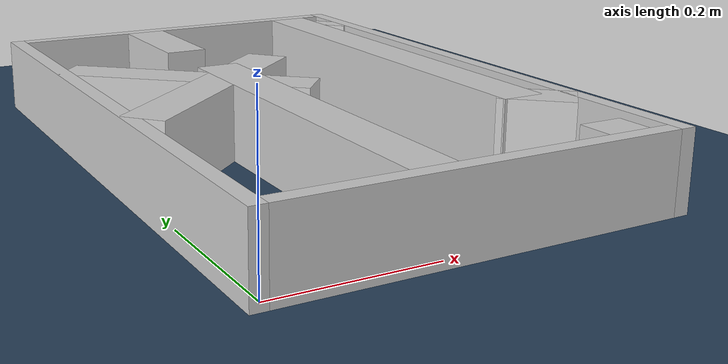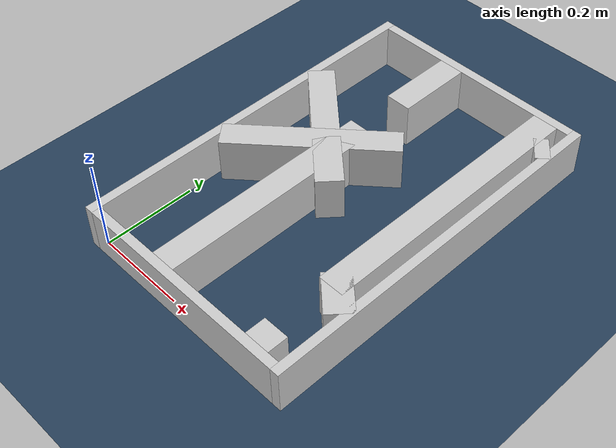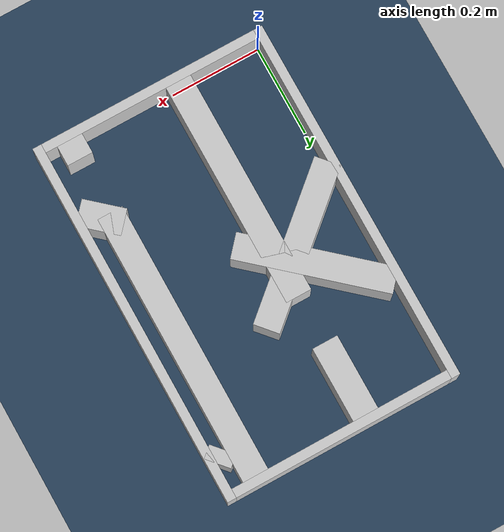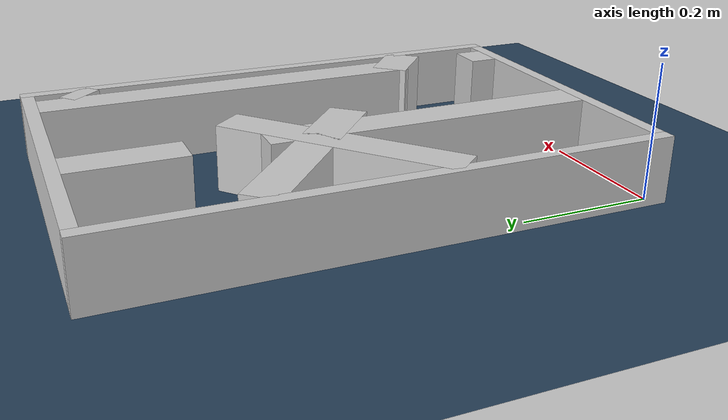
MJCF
<?xml version="1.0" ?>
<mujoco model="generated_real_template">
  <compiler angle="degree"/>
  <option timestep="0.002" integrator="implicitfast" iterations="100" cone="elliptic"/>
  <default>
    <geom density="1"/>
  </default>
  <asset>
    <texture builtin="gradient" height="3072" rgb1="0.3 0.5 0.7" rgb2="0 0 0" type="skybox" width="512"/>
    <texture builtin="checker" height="300" mark="edge" markrgb="0.8 0.8 0.8" name="groundplane" rgb1="0.2 0.3 0.4" rgb2="0.1 0.2 0.3" type="2d" width="300"/>
    <material name="groundplane" reflectance="0.2" texrepeat="5 5" texture="groundplane" texuniform="true"/>
  </asset>
  <worldbody>
    <light dir="0 0 -1" directional="true" pos="0 0 1.5"/>
    <geom name="floor" type="plane" condim="4" friction="0.5 0.005 0.001" material="groundplane" size="0 0 0.05"/>
    <body name="walls">
      <geom name="wall_boundary_left" type="box" condim="4" friction="1.0 0.005 0.0001" rgba="0.8 0.8 0.8 1" pos="-0.010000 0.387500 0.050000" euler="0 0 0.000000" size="0.010000 0.407500 0.050000"/>
      <geom name="wall_boundary_right" type="box" condim="4" friction="1.0 0.005 0.0001" rgba="0.8 0.8 0.8 1" pos="0.500000 0.387500 0.050000" euler="0 0 0.000000" size="0.010000 0.407500 0.050000"/>
      <geom name="wall_boundary_bottom" type="box" condim="4" friction="1.0 0.005 0.0001" rgba="0.8 0.8 0.8 1" pos="0.245000 -0.010000 0.050000" euler="0 0 0.000000" size="0.245000 0.010000 0.050000"/>
      <geom name="wall_boundary_top" type="box" condim="4" friction="1.0 0.005 0.0001" rgba="0.8 0.8 0.8 1" pos="0.245000 0.785000 0.050000" euler="0 0 0.000000" size="0.245000 0.010000 0.050000"/>
      <geom name="wall_inner_1_1" type="box" condim="4" friction="1.0 0.005 0.0001" rgba="0.8 0.8 0.8 1" pos="0.435402 0.022335 0.050000" euler="0 0 90.000000" size="0.022335 0.028500 0.050000"/>
      <geom name="wall_inner_1_2" type="box" condim="4" friction="1.0 0.005 0.0001" rgba="0.8 0.8 0.8 1" pos="0.435402 0.472965 0.050000" euler="0 0 90.000000" size="0.302035 0.028500 0.050000"/>
      <geom name="wall_inner_2_1" type="box" condim="4" friction="1.0 0.005 0.0001" rgba="0.8 0.8 0.8 1" pos="0.478502 0.707728 0.050000" euler="0 0 -138.849404" size="0.015269 0.028500 0.050000"/>
      <geom name="wall_inner_2_2" type="box" condim="4" friction="1.0 0.005 0.0001" rgba="0.8 0.8 0.8 1" pos="0.137274 0.409525 0.050000" euler="0 0 -138.849404" size="0.182307 0.028500 0.050000"/>
      <geom name="wall_inner_3_1" type="box" condim="4" friction="1.0 0.005 0.0001" rgba="0.8 0.8 0.8 1" pos="0.185248 0.251134 0.050000" euler="0 0 90.000000" size="0.251134 0.028500 0.050000"/>
      <geom name="wall_inner_3_2" type="box" condim="4" friction="1.0 0.005 0.0001" rgba="0.8 0.8 0.8 1" pos="0.185248 0.691880 0.050000" euler="0 0 90.000000" size="0.083120 0.028500 0.050000"/>
      <geom name="wall_inner_4_1" type="box" condim="4" friction="1.0 0.005 0.0001" rgba="0.8 0.8 0.8 1" pos="0.454689 0.170173 0.050000" euler="0 0 138.760511" size="0.046958 0.028500 0.050000"/>
      <geom name="wall_inner_4_2" type="box" condim="4" friction="1.0 0.005 0.0001" rgba="0.8 0.8 0.8 1" pos="0.125376 0.458866 0.050000" euler="0 0 138.760511" size="0.166732 0.028500 0.050000"/>
    </body>
  </worldbody>
</mujoco>
